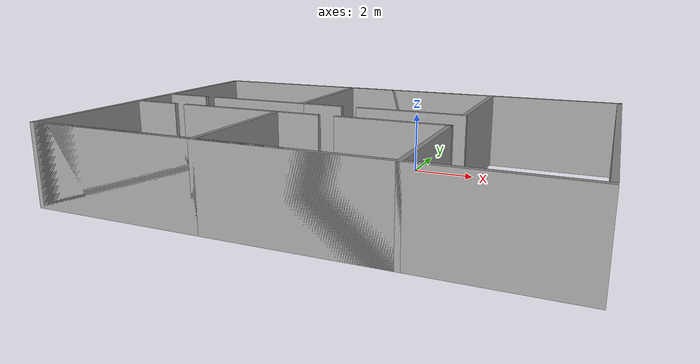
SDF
<?xml version='1.0'?>
<sdf version='1.7'>
  <model name='Untitled'>
    <pose>-1.12764 -3.06763 0 0 -0 0</pose>
    <link name='Wall_100'>
      <collision name='Wall_100_Collision'>
        <geometry>
          <box>
            <size>15 0.15 2.5</size>
          </box>
        </geometry>
        <pose>0 0 1.25 0 -0 0</pose>
      </collision>
      <visual name='Wall_100_Visual'>
        <pose>0 0 1.25 0 -0 0</pose>
        <geometry>
          <box>
            <size>15 0.15 2.5</size>
          </box>
        </geometry>
        <material>
          <script>
            <uri>file://media/materials/scripts/gazebo.material</uri>
            <name>Gazebo/Grey</name>
          </script>
          <ambient>1 1 1 1</ambient>
        </material>
        <meta>
          <layer>0</layer>
        </meta>
      </visual>
      <pose>0 4.925 0 0 -0 3.14159</pose>
    </link>
    <link name='Wall_101'>
      <collision name='Wall_101_Collision'>
        <geometry>
          <box>
            <size>10 0.15 2.5</size>
          </box>
        </geometry>
        <pose>0 0 1.25 0 -0 0</pose>
      </collision>
      <visual name='Wall_101_Visual'>
        <pose>0 0 1.25 0 -0 0</pose>
        <geometry>
          <box>
            <size>10 0.15 2.5</size>
          </box>
        </geometry>
        <material>
          <script>
            <uri>file://media/materials/scripts/gazebo.material</uri>
            <name>Gazebo/Grey</name>
          </script>
          <ambient>1 1 1 1</ambient>
        </material>
        <meta>
          <layer>0</layer>
        </meta>
      </visual>
      <pose>-7.425 -0 0 0 -0 -1.5708</pose>
    </link>
    <link name='Wall_102'>
      <collision name='Wall_102_Collision'>
        <geometry>
          <box>
            <size>5.5 0.15 2.5</size>
          </box>
        </geometry>
        <pose>0 0 1.25 0 -0 0</pose>
      </collision>
      <visual name='Wall_102_Visual'>
        <pose>0 0 1.25 0 -0 0</pose>
        <geometry>
          <box>
            <size>5.5 0.15 2.5</size>
          </box>
        </geometry>
        <material>
          <script>
            <uri>file://media/materials/scripts/gazebo.material</uri>
            <name>Gazebo/Grey</name>
          </script>
          <ambient>1 1 1 1</ambient>
        </material>
        <meta>
          <layer>0</layer>
        </meta>
      </visual>
      <pose>-4.75 -4.925 0 0 -0 0</pose>
    </link>
    <link name='Wall_103'>
      <collision name='Wall_103_Collision'>
        <geometry>
          <box>
            <size>4.25 0.15 2.5</size>
          </box>
        </geometry>
        <pose>0 0 1.25 0 -0 0</pose>
      </collision>
      <visual name='Wall_103_Visual'>
        <pose>0 0 1.25 0 -0 0</pose>
        <geometry>
          <box>
            <size>4.25 0.15 2.5</size>
          </box>
        </geometry>
        <material>
          <script>
            <uri>file://media/materials/scripts/gazebo.material</uri>
            <name>Gazebo/Grey</name>
          </script>
          <ambient>1 1 1 1</ambient>
        </material>
        <meta>
          <layer>0</layer>
        </meta>
      </visual>
      <pose>-2.075 -2.875 0 0 -0 1.5708</pose>
    </link>
    <link name='Wall_116'>
      <collision name='Wall_116_Collision'>
        <geometry>
          <box>
            <size>3.5 0.15 2.5</size>
          </box>
        </geometry>
        <pose>0 0 1.25 0 -0 0</pose>
      </collision>
      <visual name='Wall_116_Visual'>
        <pose>0 0 1.25 0 -0 0</pose>
        <geometry>
          <box>
            <size>3.5 0.15 2.5</size>
          </box>
        </geometry>
        <material>
          <script>
            <uri>file://media/materials/scripts/gazebo.material</uri>
            <name>Gazebo/Grey</name>
          </script>
          <ambient>1 1 1 1</ambient>
        </material>
        <meta>
          <layer>0</layer>
        </meta>
      </visual>
      <pose>-3.75 -0.825 0 0 -0 3.14159</pose>
    </link>
    <link name='Wall_118'>
      <collision name='Wall_118_Collision'>
        <geometry>
          <box>
            <size>1.5 0.15 2.5</size>
          </box>
        </geometry>
        <pose>0 0 1.25 0 -0 0</pose>
      </collision>
      <visual name='Wall_118_Visual'>
        <pose>0 0 1.25 0 -0 0</pose>
        <geometry>
          <box>
            <size>1.5 0.15 2.5</size>
          </box>
        </geometry>
        <material>
          <script>
            <uri>file://media/materials/scripts/gazebo.material</uri>
            <name>Gazebo/Grey</name>
          </script>
          <ambient>1 1 1 1</ambient>
        </material>
        <meta>
          <layer>0</layer>
        </meta>
      </visual>
      <pose>-6.6 -0.825 0 0 -0 0</pose>
    </link>
    <link name='Wall_120'>
      <collision name='Wall_120_Collision'>
        <geometry>
          <box>
            <size>5.5 0.15 2.5</size>
          </box>
        </geometry>
        <pose>0 0 1.25 0 -0 0</pose>
      </collision>
      <visual name='Wall_120_Visual'>
        <pose>0 0 1.25 0 -0 0</pose>
        <geometry>
          <box>
            <size>5.5 0.15 2.5</size>
          </box>
        </geometry>
        <material>
          <script>
            <uri>file://media/materials/scripts/gazebo.material</uri>
            <name>Gazebo/Grey</name>
          </script>
          <ambient>1 1 1 1</ambient>
        </material>
        <meta>
          <layer>0</layer>
        </meta>
      </visual>
      <pose>0.6 -4.925 0 0 -0 0</pose>
    </link>
    <link name='Wall_121'>
      <collision name='Wall_121_Collision'>
        <geometry>
          <box>
            <size>4.25 0.15 2.5</size>
          </box>
        </geometry>
        <pose>0 0 1.25 0 -0 0</pose>
      </collision>
      <visual name='Wall_121_Visual'>
        <pose>0 0 1.25 0 -0 0</pose>
        <geometry>
          <box>
            <size>4.25 0.15 2.5</size>
          </box>
        </geometry>
        <material>
          <script>
            <uri>file://media/materials/scripts/gazebo.material</uri>
            <name>Gazebo/Grey</name>
          </script>
          <ambient>1 1 1 1</ambient>
        </material>
        <meta>
          <layer>0</layer>
        </meta>
      </visual>
      <pose>3.275 -2.875 0 0 -0 1.5708</pose>
    </link>
    <link name='Wall_122'>
      <collision name='Wall_122_Collision'>
        <geometry>
          <box>
            <size>3.5 0.15 2.5</size>
          </box>
        </geometry>
        <pose>0 0 1.25 0 -0 0</pose>
      </collision>
      <visual name='Wall_122_Visual'>
        <pose>0 0 1.25 0 -0 0</pose>
        <geometry>
          <box>
            <size>3.5 0.15 2.5</size>
          </box>
        </geometry>
        <material>
          <script>
            <uri>file://media/materials/scripts/gazebo.material</uri>
            <name>Gazebo/Grey</name>
          </script>
          <ambient>1 1 1 1</ambient>
        </material>
        <meta>
          <layer>0</layer>
        </meta>
      </visual>
      <pose>1.6 -0.825 0 0 -0 3.14159</pose>
    </link>
    <link name='Wall_124'>
      <collision name='Wall_124_Collision'>
        <geometry>
          <box>
            <size>1.5 0.15 2.5</size>
          </box>
        </geometry>
        <pose>0 0 1.25 0 -0 0</pose>
      </collision>
      <visual name='Wall_124_Visual'>
        <pose>0 0 1.25 0 -0 0</pose>
        <geometry>
          <box>
            <size>1.5 0.15 2.5</size>
          </box>
        </geometry>
        <material>
          <script>
            <uri>file://media/materials/scripts/gazebo.material</uri>
            <name>Gazebo/Grey</name>
          </script>
          <ambient>1 1 1 1</ambient>
        </material>
        <meta>
          <layer>0</layer>
        </meta>
      </visual>
      <pose>-1.4 -0.825 0 0 -0 0</pose>
    </link>
    <link name='Wall_141'>
      <collision name='Wall_141_Collision'>
        <geometry>
          <box>
            <size>5.5 0.15 2.5</size>
          </box>
        </geometry>
        <pose>0 0 1.25 0 -0 0</pose>
      </collision>
      <visual name='Wall_141_Visual'>
        <pose>0 0 1.25 0 -0 0</pose>
        <geometry>
          <box>
            <size>5.5 0.15 2.5</size>
          </box>
        </geometry>
        <material>
          <script>
            <uri>file://media/materials/scripts/gazebo.material</uri>
            <name>Gazebo/Grey</name>
          </script>
          <ambient>1 1 1 1</ambient>
        </material>
        <meta>
          <layer>0</layer>
        </meta>
      </visual>
      <pose>-4.75 4.925 0 0 -0 0</pose>
    </link>
    <link name='Wall_142'>
      <collision name='Wall_142_Collision'>
        <geometry>
          <box>
            <size>4.25 0.15 2.5</size>
          </box>
        </geometry>
        <pose>0 0 1.25 0 -0 0</pose>
      </collision>
      <visual name='Wall_142_Visual'>
        <pose>0 0 1.25 0 -0 0</pose>
        <geometry>
          <box>
            <size>4.25 0.15 2.5</size>
          </box>
        </geometry>
        <material>
          <script>
            <uri>file://media/materials/scripts/gazebo.material</uri>
            <name>Gazebo/Grey</name>
          </script>
          <ambient>1 1 1 1</ambient>
        </material>
        <meta>
          <layer>0</layer>
        </meta>
      </visual>
      <pose>-2.075 2.875 0 0 -0 -1.5708</pose>
    </link>
    <link name='Wall_143'>
      <collision name='Wall_143_Collision'>
        <geometry>
          <box>
            <size>3.5 0.15 2.5</size>
          </box>
        </geometry>
        <pose>0 0 1.25 0 -0 0</pose>
      </collision>
      <visual name='Wall_143_Visual'>
        <pose>0 0 1.25 0 -0 0</pose>
        <geometry>
          <box>
            <size>3.5 0.15 2.5</size>
          </box>
        </geometry>
        <material>
          <script>
            <uri>file://media/materials/scripts/gazebo.material</uri>
            <name>Gazebo/Grey</name>
          </script>
          <ambient>1 1 1 1</ambient>
        </material>
        <meta>
          <layer>0</layer>
        </meta>
      </visual>
      <pose>-3.75 0.825 0 0 -0 3.14159</pose>
    </link>
    <link name='Wall_145'>
      <collision name='Wall_145_Collision'>
        <geometry>
          <box>
            <size>1.5 0.15 2.5</size>
          </box>
        </geometry>
        <pose>0 0 1.25 0 -0 0</pose>
      </collision>
      <visual name='Wall_145_Visual'>
        <pose>0 0 1.25 0 -0 0</pose>
        <geometry>
          <box>
            <size>1.5 0.15 2.5</size>
          </box>
        </geometry>
        <material>
          <script>
            <uri>file://media/materials/scripts/gazebo.material</uri>
            <name>Gazebo/Grey</name>
          </script>
          <ambient>1 1 1 1</ambient>
        </material>
        <meta>
          <layer>0</layer>
        </meta>
      </visual>
      <pose>-6.6 0.825 0 0 -0 0</pose>
    </link>
    <link name='Wall_147'>
      <collision name='Wall_147_Collision'>
        <geometry>
          <box>
            <size>5.5 0.15 2.5</size>
          </box>
        </geometry>
        <pose>0 0 1.25 0 -0 0</pose>
      </collision>
      <visual name='Wall_147_Visual'>
        <pose>0 0 1.25 0 -0 0</pose>
        <geometry>
          <box>
            <size>5.5 0.15 2.5</size>
          </box>
        </geometry>
        <material>
          <script>
            <uri>file://media/materials/scripts/gazebo.material</uri>
            <name>Gazebo/Grey</name>
          </script>
          <ambient>1 1 1 1</ambient>
        </material>
        <meta>
          <layer>0</layer>
        </meta>
      </visual>
      <pose>0.6 4.925 0 0 -0 0</pose>
    </link>
    <link name='Wall_148'>
      <collision name='Wall_148_Collision'>
        <geometry>
          <box>
            <size>4.25 0.15 2.5</size>
          </box>
        </geometry>
        <pose>0 0 1.25 0 -0 0</pose>
      </collision>
      <visual name='Wall_148_Visual'>
        <pose>0 0 1.25 0 -0 0</pose>
        <geometry>
          <box>
            <size>4.25 0.15 2.5</size>
          </box>
        </geometry>
        <material>
          <script>
            <uri>file://media/materials/scripts/gazebo.material</uri>
            <name>Gazebo/Grey</name>
          </script>
          <ambient>1 1 1 1</ambient>
        </material>
        <meta>
          <layer>0</layer>
        </meta>
      </visual>
      <pose>3.275 2.875 0 0 -0 -1.5708</pose>
    </link>
    <link name='Wall_149'>
      <collision name='Wall_149_Collision'>
        <geometry>
          <box>
            <size>3.5 0.15 2.5</size>
          </box>
        </geometry>
        <pose>0 0 1.25 0 -0 0</pose>
      </collision>
      <visual name='Wall_149_Visual'>
        <pose>0 0 1.25 0 -0 0</pose>
        <geometry>
          <box>
            <size>3.5 0.15 2.5</size>
          </box>
        </geometry>
        <material>
          <script>
            <uri>file://media/materials/scripts/gazebo.material</uri>
            <name>Gazebo/Grey</name>
          </script>
          <ambient>1 1 1 1</ambient>
        </material>
        <meta>
          <layer>0</layer>
        </meta>
      </visual>
      <pose>1.6 0.825 0 0 -0 3.14159</pose>
    </link>
    <link name='Wall_154'>
      <collision name='Wall_154_Collision'>
        <geometry>
          <box>
            <size>1.5 0.15 2.5</size>
          </box>
        </geometry>
        <pose>0 0 1.25 0 -0 0</pose>
      </collision>
      <visual name='Wall_154_Visual'>
        <pose>0 0 1.25 0 -0 0</pose>
        <geometry>
          <box>
            <size>1.5 0.15 2.5</size>
          </box>
        </geometry>
        <material>
          <script>
            <uri>file://media/materials/scripts/gazebo.material</uri>
            <name>Gazebo/Grey</name>
          </script>
          <ambient>1 1 1 1</ambient>
        </material>
        <meta>
          <layer>0</layer>
        </meta>
      </visual>
      <pose>-1.4 0.825 0 0 -0 0</pose>
    </link>
    <link name='Wall_98'>
      <collision name='Wall_98_Collision'>
        <geometry>
          <box>
            <size>15 0.15 2.5</size>
          </box>
        </geometry>
        <pose>0 0 1.25 0 -0 0</pose>
      </collision>
      <visual name='Wall_98_Visual'>
        <pose>0 0 1.25 0 -0 0</pose>
        <geometry>
          <box>
            <size>15 0.15 2.5</size>
          </box>
        </geometry>
        <material>
          <script>
            <uri>file://media/materials/scripts/gazebo.material</uri>
            <name>Gazebo/Grey</name>
          </script>
          <ambient>1 1 1 1</ambient>
        </material>
        <meta>
          <layer>0</layer>
        </meta>
      </visual>
      <pose>0 -4.925 0 0 -0 0</pose>
    </link>
    <link name='Wall_99'>
      <collision name='Wall_99_Collision'>
        <geometry>
          <box>
            <size>10 0.15 2.5</size>
          </box>
        </geometry>
        <pose>0 0 1.25 0 -0 0</pose>
      </collision>
      <visual name='Wall_99_Visual'>
        <pose>0 0 1.25 0 -0 0</pose>
        <geometry>
          <box>
            <size>10 0.15 2.5</size>
          </box>
        </geometry>
        <material>
          <script>
            <uri>file://media/materials/scripts/gazebo.material</uri>
            <name>Gazebo/Grey</name>
          </script>
          <ambient>1 1 1 1</ambient>
        </material>
        <meta>
          <layer>0</layer>
        </meta>
      </visual>
      <pose>7.425 -0 0 0 -0 1.5708</pose>
    </link>
    <static>1</static>
  </model>
</sdf>
